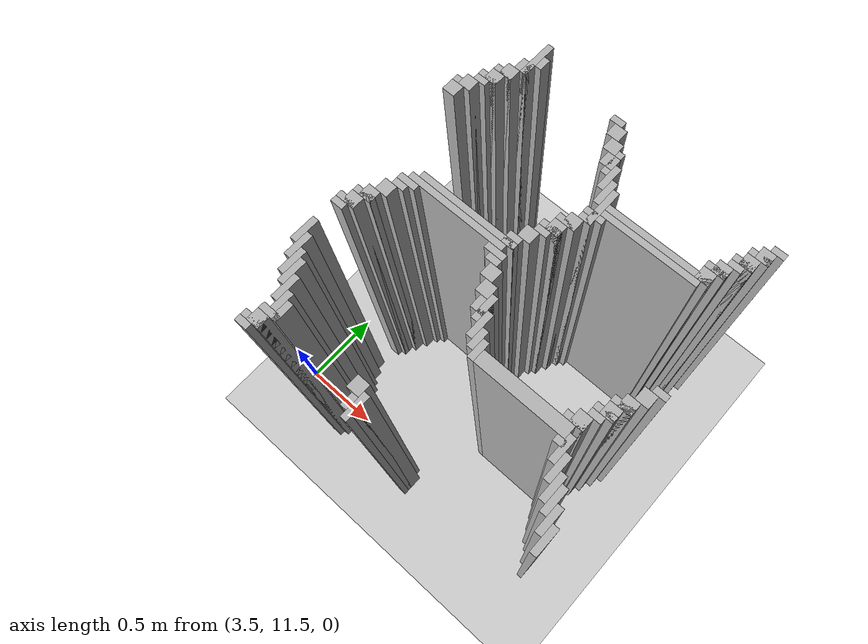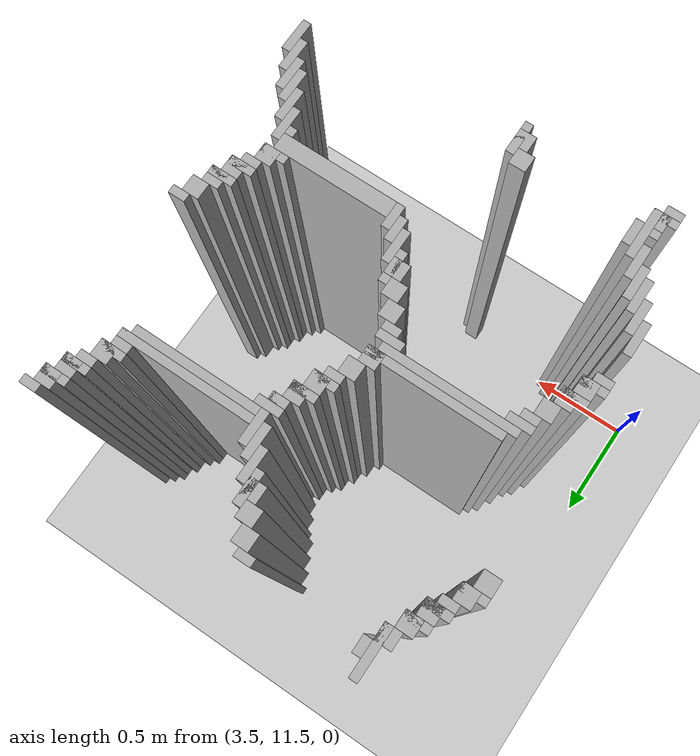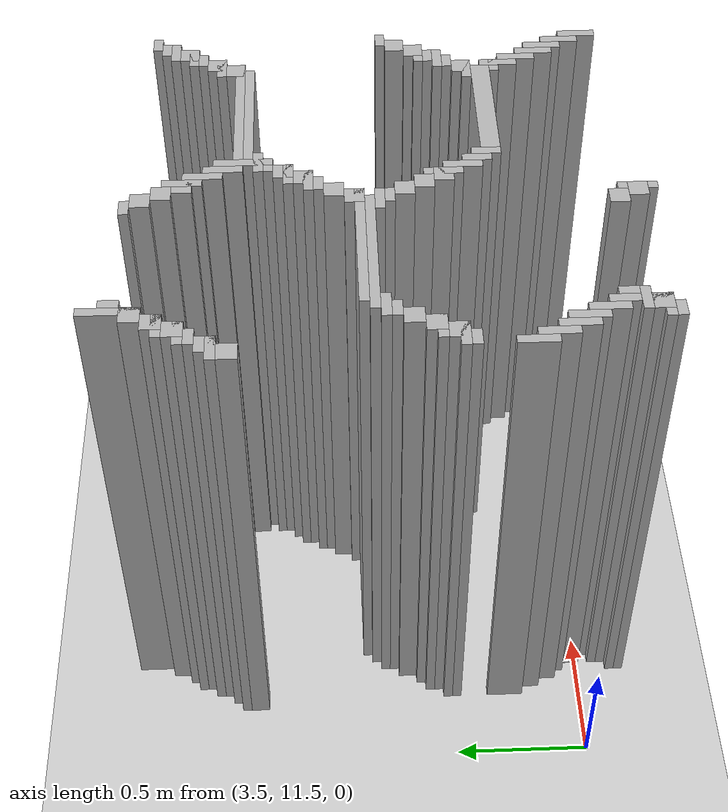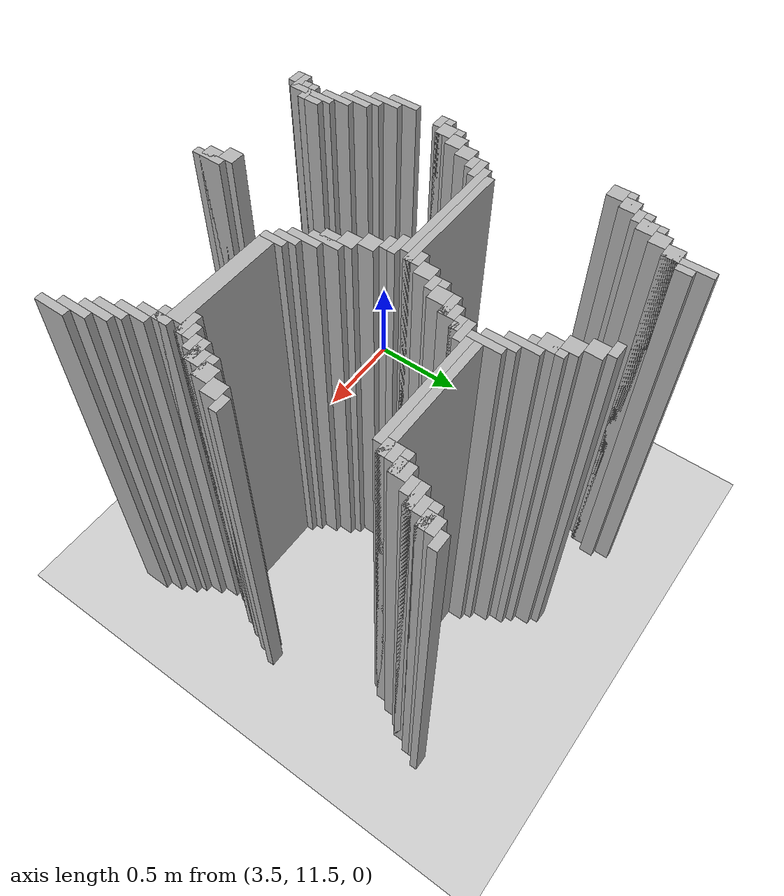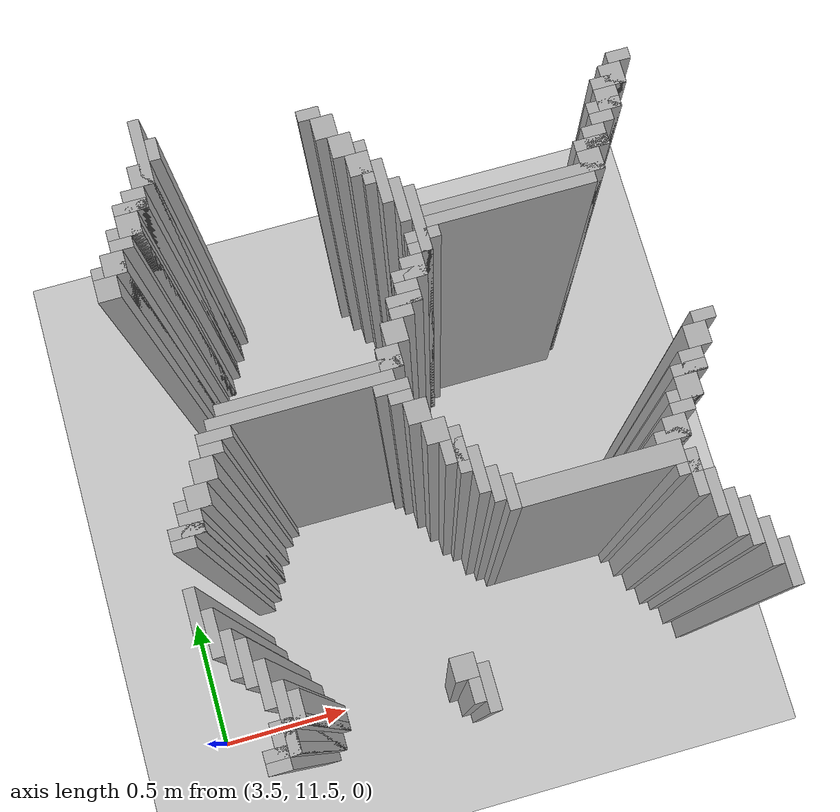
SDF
<sdf version="1.6">
 <world name="slam_world">
  <model name="ground_plane">
   <static>true</static>
   <link name="link">
    <collision name="collision">
     <geometry><plane><normal>0 0 1</normal><size>100 100</size></plane></geometry>
    </collision>
    <visual name="visual">
     <geometry><plane><normal>0 0 1</normal><size>100 100</size></plane></geometry>
     <material>
      <ambient>0.8 0.8 0.8 1</ambient>
      <diffuse>0.8 0.8 0.8 1</diffuse>
      <specular>0.8 0.8 0.8 1</specular>
     </material>
    </visual>
   </link>
  </model>
  <model name="wall_1385">
   <static>true</static>
   <pose>3.9501160092807424 13.155452436194896 1.0 0 0 0</pose>
   <link name="link">
    <collision name="collision">
     <geometry><box><size>0.03480278422273782 0.2088167053364269 2.0</size></box></geometry>
    </collision>
    <visual name="visual">
     <geometry><box><size>0.03480278422273782 0.2088167053364269 2.0</size></box></geometry>
     <material><ambient>0.5 0.5 0.5 1</ambient><diffuse>0.7 0.7 0.7 1</diffuse></material>
    </visual>
   </link>
  </model>
  <model name="wall_1406">
   <static>true</static>
   <pose>3.98491879350348 13.155452436194896 1.0 0 0 0</pose>
   <link name="link">
    <collision name="collision">
     <geometry><box><size>0.03480278422273782 0.06960556844547564 2.0</size></box></geometry>
    </collision>
    <visual name="visual">
     <geometry><box><size>0.03480278422273782 0.06960556844547564 2.0</size></box></geometry>
     <material><ambient>0.5 0.5 0.5 1</ambient><diffuse>0.7 0.7 0.7 1</diffuse></material>
    </visual>
   </link>
  </model>
  <model name="wall_1421">
   <static>true</static>
   <pose>4.454756380510441 13.138051044083527 1.0 0 0 0</pose>
   <link name="link">
    <collision name="collision">
     <geometry><box><size>0.06960556844547564 0.03480278422273782 2.0</size></box></geometry>
    </collision>
    <visual name="visual">
     <geometry><box><size>0.06960556844547564 0.03480278422273782 2.0</size></box></geometry>
     <material><ambient>0.5 0.5 0.5 1</ambient><diffuse>0.7 0.7 0.7 1</diffuse></material>
    </visual>
   </link>
  </model>
  <model name="wall_1429">
   <static>true</static>
   <pose>3.932714617169373 13.085846867749419 1.0 0 0 0</pose>
   <link name="link">
    <collision name="collision">
     <geometry><box><size>0.06960556844547564 0.06960556844547564 2.0</size></box></geometry>
    </collision>
    <visual name="visual">
     <geometry><box><size>0.06960556844547564 0.06960556844547564 2.0</size></box></geometry>
     <material><ambient>0.5 0.5 0.5 1</ambient><diffuse>0.7 0.7 0.7 1</diffuse></material>
    </visual>
   </link>
  </model>
  <model name="wall_1430">
   <static>true</static>
   <pose>4.489559164733178 13.085846867749419 1.0 0 0 0</pose>
   <link name="link">
    <collision name="collision">
     <geometry><box><size>0.06960556844547564 0.06960556844547564 2.0</size></box></geometry>
    </collision>
    <visual name="visual">
     <geometry><box><size>0.06960556844547564 0.06960556844547564 2.0</size></box></geometry>
     <material><ambient>0.5 0.5 0.5 1</ambient><diffuse>0.7 0.7 0.7 1</diffuse></material>
    </visual>
   </link>
  </model>
  <model name="wall_1444">
   <static>true</static>
   <pose>5.3944315545243615 13.06844547563805 1.0 0 0 0</pose>
   <link name="link">
    <collision name="collision">
     <geometry><box><size>0.06960556844547564 0.03480278422273782 2.0</size></box></geometry>
    </collision>
    <visual name="visual">
     <geometry><box><size>0.06960556844547564 0.03480278422273782 2.0</size></box></geometry>
     <material><ambient>0.5 0.5 0.5 1</ambient><diffuse>0.7 0.7 0.7 1</diffuse></material>
    </visual>
   </link>
  </model>
  <model name="wall_1451">
   <static>true</static>
   <pose>3.897911832946636 13.016241299303944 1.0 0 0 0</pose>
   <link name="link">
    <collision name="collision">
     <geometry><box><size>0.06960556844547564 0.06960556844547564 2.0</size></box></geometry>
    </collision>
    <visual name="visual">
     <geometry><box><size>0.06960556844547564 0.06960556844547564 2.0</size></box></geometry>
     <material><ambient>0.5 0.5 0.5 1</ambient><diffuse>0.7 0.7 0.7 1</diffuse></material>
    </visual>
   </link>
  </model>
  <model name="wall_1452">
   <static>true</static>
   <pose>4.524361948955916 13.016241299303944 1.0 0 0 0</pose>
   <link name="link">
    <collision name="collision">
     <geometry><box><size>0.06960556844547564 0.06960556844547564 2.0</size></box></geometry>
    </collision>
    <visual name="visual">
     <geometry><box><size>0.06960556844547564 0.06960556844547564 2.0</size></box></geometry>
     <material><ambient>0.5 0.5 0.5 1</ambient><diffuse>0.7 0.7 0.7 1</diffuse></material>
    </visual>
   </link>
  </model>
  <model name="wall_1453">
   <static>true</static>
   <pose>5.359628770301624 13.016241299303944 1.0 0 0 0</pose>
   <link name="link">
    <collision name="collision">
     <geometry><box><size>0.06960556844547564 0.06960556844547564 2.0</size></box></geometry>
    </collision>
    <visual name="visual">
     <geometry><box><size>0.06960556844547564 0.06960556844547564 2.0</size></box></geometry>
     <material><ambient>0.5 0.5 0.5 1</ambient><diffuse>0.7 0.7 0.7 1</diffuse></material>
    </visual>
   </link>
  </model>
  <model name="wall_1467">
   <static>true</static>
   <pose>3.8805104408352666 12.998839907192576 1.0 0 0 0</pose>
   <link name="link">
    <collision name="collision">
     <geometry><box><size>0.10440835266821345 0.03480278422273782 2.0</size></box></geometry>
    </collision>
    <visual name="visual">
     <geometry><box><size>0.10440835266821345 0.03480278422273782 2.0</size></box></geometry>
     <material><ambient>0.5 0.5 0.5 1</ambient><diffuse>0.7 0.7 0.7 1</diffuse></material>
    </visual>
   </link>
  </model>
  <model name="wall_1468">
   <static>true</static>
   <pose>4.576566125290023 12.946635730858468 1.0 0 0 0</pose>
   <link name="link">
    <collision name="collision">
     <geometry><box><size>0.03480278422273782 0.13921113689095127 2.0</size></box></geometry>
    </collision>
    <visual name="visual">
     <geometry><box><size>0.03480278422273782 0.13921113689095127 2.0</size></box></geometry>
     <material><ambient>0.5 0.5 0.5 1</ambient><diffuse>0.7 0.7 0.7 1</diffuse></material>
    </visual>
   </link>
  </model>
  <model name="wall_1469">
   <static>true</static>
   <pose>5.342227378190255 12.998839907192576 1.0 0 0 0</pose>
   <link name="link">
    <collision name="collision">
     <geometry><box><size>0.10440835266821345 0.03480278422273782 2.0</size></box></geometry>
    </collision>
    <visual name="visual">
     <geometry><box><size>0.10440835266821345 0.03480278422273782 2.0</size></box></geometry>
     <material><ambient>0.5 0.5 0.5 1</ambient><diffuse>0.7 0.7 0.7 1</diffuse></material>
    </visual>
   </link>
  </model>
  <model name="wall_1483">
   <static>true</static>
   <pose>3.863109048723898 12.946635730858468 1.0 0 0 0</pose>
   <link name="link">
    <collision name="collision">
     <geometry><box><size>0.06960556844547564 0.06960556844547564 2.0</size></box></geometry>
    </collision>
    <visual name="visual">
     <geometry><box><size>0.06960556844547564 0.06960556844547564 2.0</size></box></geometry>
     <material><ambient>0.5 0.5 0.5 1</ambient><diffuse>0.7 0.7 0.7 1</diffuse></material>
    </visual>
   </link>
  </model>
  <model name="wall_1484">
   <static>true</static>
   <pose>4.559164733178654 12.946635730858468 1.0 0 0 0</pose>
   <link name="link">
    <collision name="collision">
     <geometry><box><size>0.06960556844547564 0.06960556844547564 2.0</size></box></geometry>
    </collision>
    <visual name="visual">
     <geometry><box><size>0.06960556844547564 0.06960556844547564 2.0</size></box></geometry>
     <material><ambient>0.5 0.5 0.5 1</ambient><diffuse>0.7 0.7 0.7 1</diffuse></material>
    </visual>
   </link>
  </model>
  <model name="wall_1485">
   <static>true</static>
   <pose>5.324825986078886 12.946635730858468 1.0 0 0 0</pose>
   <link name="link">
    <collision name="collision">
     <geometry><box><size>0.06960556844547564 0.06960556844547564 2.0</size></box></geometry>
    </collision>
    <visual name="visual">
     <geometry><box><size>0.06960556844547564 0.06960556844547564 2.0</size></box></geometry>
     <material><ambient>0.5 0.5 0.5 1</ambient><diffuse>0.7 0.7 0.7 1</diffuse></material>
    </visual>
   </link>
  </model>
  <model name="wall_1499">
   <static>true</static>
   <pose>3.845707656612529 12.929234338747099 1.0 0 0 0</pose>
   <link name="link">
    <collision name="collision">
     <geometry><box><size>0.10440835266821345 0.03480278422273782 2.0</size></box></geometry>
    </collision>
    <visual name="visual">
     <geometry><box><size>0.10440835266821345 0.03480278422273782 2.0</size></box></geometry>
     <material><ambient>0.5 0.5 0.5 1</ambient><diffuse>0.7 0.7 0.7 1</diffuse></material>
    </visual>
   </link>
  </model>
  <model name="wall_1500">
   <static>true</static>
   <pose>4.611368909512761 12.877030162412993 1.0 0 0 0</pose>
   <link name="link">
    <collision name="collision">
     <geometry><box><size>0.03480278422273782 0.13921113689095127 2.0</size></box></geometry>
    </collision>
    <visual name="visual">
     <geometry><box><size>0.03480278422273782 0.13921113689095127 2.0</size></box></geometry>
     <material><ambient>0.5 0.5 0.5 1</ambient><diffuse>0.7 0.7 0.7 1</diffuse></material>
    </visual>
   </link>
  </model>
  <model name="wall_1501">
   <static>true</static>
   <pose>5.307424593967517 12.929234338747099 1.0 0 0 0</pose>
   <link name="link">
    <collision name="collision">
     <geometry><box><size>0.10440835266821345 0.03480278422273782 2.0</size></box></geometry>
    </collision>
    <visual name="visual">
     <geometry><box><size>0.10440835266821345 0.03480278422273782 2.0</size></box></geometry>
     <material><ambient>0.5 0.5 0.5 1</ambient><diffuse>0.7 0.7 0.7 1</diffuse></material>
    </visual>
   </link>
  </model>
  <model name="wall_1513">
   <static>true</static>
   <pose>3.82830626450116 12.894431554524362 1.0 0 0 0</pose>
   <link name="link">
    <collision name="collision">
     <geometry><box><size>0.06960556844547564 0.03480278422273782 2.0</size></box></geometry>
    </collision>
    <visual name="visual">
     <geometry><box><size>0.06960556844547564 0.03480278422273782 2.0</size></box></geometry>
     <material><ambient>0.5 0.5 0.5 1</ambient><diffuse>0.7 0.7 0.7 1</diffuse></material>
    </visual>
   </link>
  </model>
  <model name="wall_1514">
   <static>true</static>
   <pose>5.290023201856148 12.894431554524362 1.0 0 0 0</pose>
   <link name="link">
    <collision name="collision">
     <geometry><box><size>0.06960556844547564 0.03480278422273782 2.0</size></box></geometry>
    </collision>
    <visual name="visual">
     <geometry><box><size>0.06960556844547564 0.03480278422273782 2.0</size></box></geometry>
     <material><ambient>0.5 0.5 0.5 1</ambient><diffuse>0.7 0.7 0.7 1</diffuse></material>
    </visual>
   </link>
  </model>
  <model name="wall_1524">
   <static>true</static>
   <pose>3.793503480278422 12.842227378190255 1.0 0 0 0</pose>
   <link name="link">
    <collision name="collision">
     <geometry><box><size>0.06960556844547564 0.06960556844547564 2.0</size></box></geometry>
    </collision>
    <visual name="visual">
     <geometry><box><size>0.06960556844547564 0.06960556844547564 2.0</size></box></geometry>
     <material><ambient>0.5 0.5 0.5 1</ambient><diffuse>0.7 0.7 0.7 1</diffuse></material>
    </visual>
   </link>
  </model>
  <model name="wall_1525">
   <static>true</static>
   <pose>4.646171693735498 12.807424593967516 1.0 0 0 0</pose>
   <link name="link">
    <collision name="collision">
     <geometry><box><size>0.03480278422273782 0.13921113689095127 2.0</size></box></geometry>
    </collision>
    <visual name="visual">
     <geometry><box><size>0.03480278422273782 0.13921113689095127 2.0</size></box></geometry>
     <material><ambient>0.5 0.5 0.5 1</ambient><diffuse>0.7 0.7 0.7 1</diffuse></material>
    </visual>
   </link>
  </model>
  <model name="wall_1526">
   <static>true</static>
   <pose>5.25522041763341 12.842227378190255 1.0 0 0 0</pose>
   <link name="link">
    <collision name="collision">
     <geometry><box><size>0.06960556844547564 0.06960556844547564 2.0</size></box></geometry>
    </collision>
    <visual name="visual">
     <geometry><box><size>0.06960556844547564 0.06960556844547564 2.0</size></box></geometry>
     <material><ambient>0.5 0.5 0.5 1</ambient><diffuse>0.7 0.7 0.7 1</diffuse></material>
    </visual>
   </link>
  </model>
  <model name="wall_1540">
   <static>true</static>
   <pose>3.776102088167053 12.824825986078885 1.0 0 0 0</pose>
   <link name="link">
    <collision name="collision">
     <geometry><box><size>0.10440835266821345 0.03480278422273782 2.0</size></box></geometry>
    </collision>
    <visual name="visual">
     <geometry><box><size>0.10440835266821345 0.03480278422273782 2.0</size></box></geometry>
     <material><ambient>0.5 0.5 0.5 1</ambient><diffuse>0.7 0.7 0.7 1</diffuse></material>
    </visual>
   </link>
  </model>
  <model name="wall_1541">
   <static>true</static>
   <pose>4.6809744779582365 12.737819025522041 1.0 0 0 0</pose>
   <link name="link">
    <collision name="collision">
     <geometry><box><size>0.03480278422273782 0.2088167053364269 2.0</size></box></geometry>
    </collision>
    <visual name="visual">
     <geometry><box><size>0.03480278422273782 0.2088167053364269 2.0</size></box></geometry>
     <material><ambient>0.5 0.5 0.5 1</ambient><diffuse>0.7 0.7 0.7 1</diffuse></material>
    </visual>
   </link>
  </model>
  <model name="wall_1542">
   <static>true</static>
   <pose>5.237819025522041 12.824825986078885 1.0 0 0 0</pose>
   <link name="link">
    <collision name="collision">
     <geometry><box><size>0.10440835266821345 0.03480278422273782 2.0</size></box></geometry>
    </collision>
    <visual name="visual">
     <geometry><box><size>0.10440835266821345 0.03480278422273782 2.0</size></box></geometry>
     <material><ambient>0.5 0.5 0.5 1</ambient><diffuse>0.7 0.7 0.7 1</diffuse></material>
    </visual>
   </link>
  </model>
  <model name="wall_1554">
   <static>true</static>
   <pose>3.7587006960556844 12.772621809744779 1.0 0 0 0</pose>
   <link name="link">
    <collision name="collision">
     <geometry><box><size>0.06960556844547564 0.06960556844547564 2.0</size></box></geometry>
    </collision>
    <visual name="visual">
     <geometry><box><size>0.06960556844547564 0.06960556844547564 2.0</size></box></geometry>
     <material><ambient>0.5 0.5 0.5 1</ambient><diffuse>0.7 0.7 0.7 1</diffuse></material>
    </visual>
   </link>
  </model>
  <model name="wall_1555">
   <static>true</static>
   <pose>5.220417633410673 12.772621809744779 1.0 0 0 0</pose>
   <link name="link">
    <collision name="collision">
     <geometry><box><size>0.06960556844547564 0.06960556844547564 2.0</size></box></geometry>
    </collision>
    <visual name="visual">
     <geometry><box><size>0.06960556844547564 0.06960556844547564 2.0</size></box></geometry>
     <material><ambient>0.5 0.5 0.5 1</ambient><diffuse>0.7 0.7 0.7 1</diffuse></material>
    </visual>
   </link>
  </model>
  <model name="wall_1566">
   <static>true</static>
   <pose>4.976798143851508 12.75522041763341 1.0 0 0 0</pose>
   <link name="link">
    <collision name="collision">
     <geometry><box><size>0.5568445475638051 0.03480278422273782 2.0</size></box></geometry>
    </collision>
    <visual name="visual">
     <geometry><box><size>0.5568445475638051 0.03480278422273782 2.0</size></box></geometry>
     <material><ambient>0.5 0.5 0.5 1</ambient><diffuse>0.7 0.7 0.7 1</diffuse></material>
    </visual>
   </link>
  </model>
  <model name="wall_1578">
   <static>true</static>
   <pose>4.959396751740139 12.720417633410673 1.0 0 0 0</pose>
   <link name="link">
    <collision name="collision">
     <geometry><box><size>0.5220417633410672 0.03480278422273782 2.0</size></box></geometry>
    </collision>
    <visual name="visual">
     <geometry><box><size>0.5220417633410672 0.03480278422273782 2.0</size></box></geometry>
     <material><ambient>0.5 0.5 0.5 1</ambient><diffuse>0.7 0.7 0.7 1</diffuse></material>
    </visual>
   </link>
  </model>
  <model name="wall_1589">
   <static>true</static>
   <pose>4.6809744779582365 12.685614849187935 1.0 0 0 0</pose>
   <link name="link">
    <collision name="collision">
     <geometry><box><size>0.10440835266821345 0.03480278422273782 2.0</size></box></geometry>
    </collision>
    <visual name="visual">
     <geometry><box><size>0.10440835266821345 0.03480278422273782 2.0</size></box></geometry>
     <material><ambient>0.5 0.5 0.5 1</ambient><diffuse>0.7 0.7 0.7 1</diffuse></material>
    </visual>
   </link>
  </model>
  <model name="wall_1602">
   <static>true</static>
   <pose>4.663573085846868 12.650812064965196 1.0 0 0 0</pose>
   <link name="link">
    <collision name="collision">
     <geometry><box><size>0.06960556844547564 0.03480278422273782 2.0</size></box></geometry>
    </collision>
    <visual name="visual">
     <geometry><box><size>0.06960556844547564 0.03480278422273782 2.0</size></box></geometry>
     <material><ambient>0.5 0.5 0.5 1</ambient><diffuse>0.7 0.7 0.7 1</diffuse></material>
    </visual>
   </link>
  </model>
  <model name="wall_1613">
   <static>true</static>
   <pose>4.6287703016241295 12.59860788863109 1.0 0 0 0</pose>
   <link name="link">
    <collision name="collision">
     <geometry><box><size>0.06960556844547564 0.06960556844547564 2.0</size></box></geometry>
    </collision>
    <visual name="visual">
     <geometry><box><size>0.06960556844547564 0.06960556844547564 2.0</size></box></geometry>
     <material><ambient>0.5 0.5 0.5 1</ambient><diffuse>0.7 0.7 0.7 1</diffuse></material>
    </visual>
   </link>
  </model>
  <model name="wall_1626">
   <static>true</static>
   <pose>4.611368909512761 12.581206496519721 1.0 0 0 0</pose>
   <link name="link">
    <collision name="collision">
     <geometry><box><size>0.10440835266821345 0.03480278422273782 2.0</size></box></geometry>
    </collision>
    <visual name="visual">
     <geometry><box><size>0.10440835266821345 0.03480278422273782 2.0</size></box></geometry>
     <material><ambient>0.5 0.5 0.5 1</ambient><diffuse>0.7 0.7 0.7 1</diffuse></material>
    </visual>
   </link>
  </model>
  <model name="wall_1638">
   <static>true</static>
   <pose>4.593967517401392 12.529002320185615 1.0 0 0 0</pose>
   <link name="link">
    <collision name="collision">
     <geometry><box><size>0.06960556844547564 0.06960556844547564 2.0</size></box></geometry>
    </collision>
    <visual name="visual">
     <geometry><box><size>0.06960556844547564 0.06960556844547564 2.0</size></box></geometry>
     <material><ambient>0.5 0.5 0.5 1</ambient><diffuse>0.7 0.7 0.7 1</diffuse></material>
    </visual>
   </link>
  </model>
  <model name="wall_1650">
   <static>true</static>
   <pose>4.576566125290023 12.511600928074245 1.0 0 0 0</pose>
   <link name="link">
    <collision name="collision">
     <geometry><box><size>0.10440835266821345 0.03480278422273782 2.0</size></box></geometry>
    </collision>
    <visual name="visual">
     <geometry><box><size>0.10440835266821345 0.03480278422273782 2.0</size></box></geometry>
     <material><ambient>0.5 0.5 0.5 1</ambient><diffuse>0.7 0.7 0.7 1</diffuse></material>
    </visual>
   </link>
  </model>
  <model name="wall_1661">
   <static>true</static>
   <pose>4.559164733178654 12.476798143851507 1.0 0 0 0</pose>
   <link name="link">
    <collision name="collision">
     <geometry><box><size>0.06960556844547564 0.03480278422273782 2.0</size></box></geometry>
    </collision>
    <visual name="visual">
     <geometry><box><size>0.06960556844547564 0.03480278422273782 2.0</size></box></geometry>
     <material><ambient>0.5 0.5 0.5 1</ambient><diffuse>0.7 0.7 0.7 1</diffuse></material>
    </visual>
   </link>
  </model>
  <model name="wall_1671">
   <static>true</static>
   <pose>4.524361948955916 12.424593967517401 1.0 0 0 0</pose>
   <link name="link">
    <collision name="collision">
     <geometry><box><size>0.06960556844547564 0.06960556844547564 2.0</size></box></geometry>
    </collision>
    <visual name="visual">
     <geometry><box><size>0.06960556844547564 0.06960556844547564 2.0</size></box></geometry>
     <material><ambient>0.5 0.5 0.5 1</ambient><diffuse>0.7 0.7 0.7 1</diffuse></material>
    </visual>
   </link>
  </model>
  <model name="wall_1684">
   <static>true</static>
   <pose>4.489559164733178 12.354988399071924 1.0 0 0 0</pose>
   <link name="link">
    <collision name="collision">
     <geometry><box><size>0.06960556844547564 0.06960556844547564 2.0</size></box></geometry>
    </collision>
    <visual name="visual">
     <geometry><box><size>0.06960556844547564 0.06960556844547564 2.0</size></box></geometry>
     <material><ambient>0.5 0.5 0.5 1</ambient><diffuse>0.7 0.7 0.7 1</diffuse></material>
    </visual>
   </link>
  </model>
  <model name="wall_1697">
   <static>true</static>
   <pose>4.2459396751740135 12.337587006960556 1.0 0 0 0</pose>
   <link name="link">
    <collision name="collision">
     <geometry><box><size>0.5568445475638051 0.03480278422273782 2.0</size></box></geometry>
    </collision>
    <visual name="visual">
     <geometry><box><size>0.5568445475638051 0.03480278422273782 2.0</size></box></geometry>
     <material><ambient>0.5 0.5 0.5 1</ambient><diffuse>0.7 0.7 0.7 1</diffuse></material>
    </visual>
   </link>
  </model>
  <model name="wall_1708">
   <static>true</static>
   <pose>4.211136890951276 12.302784222737818 1.0 0 0 0</pose>
   <link name="link">
    <collision name="collision">
     <geometry><box><size>0.5568445475638051 0.03480278422273782 2.0</size></box></geometry>
    </collision>
    <visual name="visual">
     <geometry><box><size>0.5568445475638051 0.03480278422273782 2.0</size></box></geometry>
     <material><ambient>0.5 0.5 0.5 1</ambient><diffuse>0.7 0.7 0.7 1</diffuse></material>
    </visual>
   </link>
  </model>
  <model name="wall_1721">
   <static>true</static>
   <pose>3.9501160092807424 12.267981438515081 1.0 0 0 0</pose>
   <link name="link">
    <collision name="collision">
     <geometry><box><size>0.10440835266821345 0.03480278422273782 2.0</size></box></geometry>
    </collision>
    <visual name="visual">
     <geometry><box><size>0.10440835266821345 0.03480278422273782 2.0</size></box></geometry>
     <material><ambient>0.5 0.5 0.5 1</ambient><diffuse>0.7 0.7 0.7 1</diffuse></material>
    </visual>
   </link>
  </model>
  <model name="wall_1722">
   <static>true</static>
   <pose>4.472157772621809 12.267981438515081 1.0 0 0 0</pose>
   <link name="link">
    <collision name="collision">
     <geometry><box><size>0.10440835266821345 0.03480278422273782 2.0</size></box></geometry>
    </collision>
    <visual name="visual">
     <geometry><box><size>0.10440835266821345 0.03480278422273782 2.0</size></box></geometry>
     <material><ambient>0.5 0.5 0.5 1</ambient><diffuse>0.7 0.7 0.7 1</diffuse></material>
    </visual>
   </link>
  </model>
  <model name="wall_1740">
   <static>true</static>
   <pose>3.932714617169373 12.233178654292344 1.0 0 0 0</pose>
   <link name="link">
    <collision name="collision">
     <geometry><box><size>0.06960556844547564 0.03480278422273782 2.0</size></box></geometry>
    </collision>
    <visual name="visual">
     <geometry><box><size>0.06960556844547564 0.03480278422273782 2.0</size></box></geometry>
     <material><ambient>0.5 0.5 0.5 1</ambient><diffuse>0.7 0.7 0.7 1</diffuse></material>
    </visual>
   </link>
  </model>
  <model name="wall_1741">
   <static>true</static>
   <pose>4.489559164733178 12.233178654292344 1.0 0 0 0</pose>
   <link name="link">
    <collision name="collision">
     <geometry><box><size>0.06960556844547564 0.03480278422273782 2.0</size></box></geometry>
    </collision>
    <visual name="visual">
     <geometry><box><size>0.06960556844547564 0.03480278422273782 2.0</size></box></geometry>
     <material><ambient>0.5 0.5 0.5 1</ambient><diffuse>0.7 0.7 0.7 1</diffuse></material>
    </visual>
   </link>
  </model>
  <model name="wall_1742">
   <static>true</static>
   <pose>5.3944315545243615 12.233178654292344 1.0 0 0 0</pose>
   <link name="link">
    <collision name="collision">
     <geometry><box><size>0.06960556844547564 0.03480278422273782 2.0</size></box></geometry>
    </collision>
    <visual name="visual">
     <geometry><box><size>0.06960556844547564 0.03480278422273782 2.0</size></box></geometry>
     <material><ambient>0.5 0.5 0.5 1</ambient><diffuse>0.7 0.7 0.7 1</diffuse></material>
    </visual>
   </link>
  </model>
  <model name="wall_1756">
   <static>true</static>
   <pose>3.897911832946636 12.180974477958236 1.0 0 0 0</pose>
   <link name="link">
    <collision name="collision">
     <geometry><box><size>0.06960556844547564 0.06960556844547564 2.0</size></box></geometry>
    </collision>
    <visual name="visual">
     <geometry><box><size>0.06960556844547564 0.06960556844547564 2.0</size></box></geometry>
     <material><ambient>0.5 0.5 0.5 1</ambient><diffuse>0.7 0.7 0.7 1</diffuse></material>
    </visual>
   </link>
  </model>
  <model name="wall_1757">
   <static>true</static>
   <pose>4.524361948955916 12.180974477958236 1.0 0 0 0</pose>
   <link name="link">
    <collision name="collision">
     <geometry><box><size>0.06960556844547564 0.06960556844547564 2.0</size></box></geometry>
    </collision>
    <visual name="visual">
     <geometry><box><size>0.06960556844547564 0.06960556844547564 2.0</size></box></geometry>
     <material><ambient>0.5 0.5 0.5 1</ambient><diffuse>0.7 0.7 0.7 1</diffuse></material>
    </visual>
   </link>
  </model>
  <model name="wall_1758">
   <static>true</static>
   <pose>5.359628770301624 12.180974477958236 1.0 0 0 0</pose>
   <link name="link">
    <collision name="collision">
     <geometry><box><size>0.06960556844547564 0.06960556844547564 2.0</size></box></geometry>
    </collision>
    <visual name="visual">
     <geometry><box><size>0.06960556844547564 0.06960556844547564 2.0</size></box></geometry>
     <material><ambient>0.5 0.5 0.5 1</ambient><diffuse>0.7 0.7 0.7 1</diffuse></material>
    </visual>
   </link>
  </model>
  <model name="wall_1772">
   <static>true</static>
   <pose>3.863109048723898 12.11136890951276 1.0 0 0 0</pose>
   <link name="link">
    <collision name="collision">
     <geometry><box><size>0.06960556844547564 0.06960556844547564 2.0</size></box></geometry>
    </collision>
    <visual name="visual">
     <geometry><box><size>0.06960556844547564 0.06960556844547564 2.0</size></box></geometry>
     <material><ambient>0.5 0.5 0.5 1</ambient><diffuse>0.7 0.7 0.7 1</diffuse></material>
    </visual>
   </link>
  </model>
  <model name="wall_1773">
   <static>true</static>
   <pose>4.559164733178654 12.11136890951276 1.0 0 0 0</pose>
   <link name="link">
    <collision name="collision">
     <geometry><box><size>0.06960556844547564 0.06960556844547564 2.0</size></box></geometry>
    </collision>
    <visual name="visual">
     <geometry><box><size>0.06960556844547564 0.06960556844547564 2.0</size></box></geometry>
     <material><ambient>0.5 0.5 0.5 1</ambient><diffuse>0.7 0.7 0.7 1</diffuse></material>
    </visual>
   </link>
  </model>
  <model name="wall_1774">
   <static>true</static>
   <pose>5.324825986078886 12.11136890951276 1.0 0 0 0</pose>
   <link name="link">
    <collision name="collision">
     <geometry><box><size>0.06960556844547564 0.06960556844547564 2.0</size></box></geometry>
    </collision>
    <visual name="visual">
     <geometry><box><size>0.06960556844547564 0.06960556844547564 2.0</size></box></geometry>
     <material><ambient>0.5 0.5 0.5 1</ambient><diffuse>0.7 0.7 0.7 1</diffuse></material>
    </visual>
   </link>
  </model>
  <model name="wall_1788">
   <static>true</static>
   <pose>3.845707656612529 12.093967517401392 1.0 0 0 0</pose>
   <link name="link">
    <collision name="collision">
     <geometry><box><size>0.10440835266821345 0.03480278422273782 2.0</size></box></geometry>
    </collision>
    <visual name="visual">
     <geometry><box><size>0.10440835266821345 0.03480278422273782 2.0</size></box></geometry>
     <material><ambient>0.5 0.5 0.5 1</ambient><diffuse>0.7 0.7 0.7 1</diffuse></material>
    </visual>
   </link>
  </model>
  <model name="wall_1789">
   <static>true</static>
   <pose>4.611368909512761 12.041763341067284 1.0 0 0 0</pose>
   <link name="link">
    <collision name="collision">
     <geometry><box><size>0.03480278422273782 0.13921113689095127 2.0</size></box></geometry>
    </collision>
    <visual name="visual">
     <geometry><box><size>0.03480278422273782 0.13921113689095127 2.0</size></box></geometry>
     <material><ambient>0.5 0.5 0.5 1</ambient><diffuse>0.7 0.7 0.7 1</diffuse></material>
    </visual>
   </link>
  </model>
  <model name="wall_1790">
   <static>true</static>
   <pose>5.307424593967517 12.093967517401392 1.0 0 0 0</pose>
   <link name="link">
    <collision name="collision">
     <geometry><box><size>0.10440835266821345 0.03480278422273782 2.0</size></box></geometry>
    </collision>
    <visual name="visual">
     <geometry><box><size>0.10440835266821345 0.03480278422273782 2.0</size></box></geometry>
     <material><ambient>0.5 0.5 0.5 1</ambient><diffuse>0.7 0.7 0.7 1</diffuse></material>
    </visual>
   </link>
  </model>
  <model name="wall_1801">
   <static>true</static>
   <pose>3.82830626450116 12.041763341067284 1.0 0 0 0</pose>
   <link name="link">
    <collision name="collision">
     <geometry><box><size>0.06960556844547564 0.06960556844547564 2.0</size></box></geometry>
    </collision>
    <visual name="visual">
     <geometry><box><size>0.06960556844547564 0.06960556844547564 2.0</size></box></geometry>
     <material><ambient>0.5 0.5 0.5 1</ambient><diffuse>0.7 0.7 0.7 1</diffuse></material>
    </visual>
   </link>
  </model>
  <model name="wall_1802">
   <static>true</static>
   <pose>4.593967517401392 12.041763341067284 1.0 0 0 0</pose>
   <link name="link">
    <collision name="collision">
     <geometry><box><size>0.06960556844547564 0.06960556844547564 2.0</size></box></geometry>
    </collision>
    <visual name="visual">
     <geometry><box><size>0.06960556844547564 0.06960556844547564 2.0</size></box></geometry>
     <material><ambient>0.5 0.5 0.5 1</ambient><diffuse>0.7 0.7 0.7 1</diffuse></material>
    </visual>
   </link>
  </model>
  <model name="wall_1803">
   <static>true</static>
   <pose>5.290023201856148 12.041763341067284 1.0 0 0 0</pose>
   <link name="link">
    <collision name="collision">
     <geometry><box><size>0.06960556844547564 0.06960556844547564 2.0</size></box></geometry>
    </collision>
    <visual name="visual">
     <geometry><box><size>0.06960556844547564 0.06960556844547564 2.0</size></box></geometry>
     <material><ambient>0.5 0.5 0.5 1</ambient><diffuse>0.7 0.7 0.7 1</diffuse></material>
    </visual>
   </link>
  </model>
  <model name="wall_1814">
   <static>true</static>
   <pose>3.810904872389791 12.024361948955915 1.0 0 0 0</pose>
   <link name="link">
    <collision name="collision">
     <geometry><box><size>0.10440835266821345 0.03480278422273782 2.0</size></box></geometry>
    </collision>
    <visual name="visual">
     <geometry><box><size>0.10440835266821345 0.03480278422273782 2.0</size></box></geometry>
     <material><ambient>0.5 0.5 0.5 1</ambient><diffuse>0.7 0.7 0.7 1</diffuse></material>
    </visual>
   </link>
  </model>
  <model name="wall_1815">
   <static>true</static>
   <pose>4.646171693735498 11.97215777262181 1.0 0 0 0</pose>
   <link name="link">
    <collision name="collision">
     <geometry><box><size>0.03480278422273782 0.13921113689095127 2.0</size></box></geometry>
    </collision>
    <visual name="visual">
     <geometry><box><size>0.03480278422273782 0.13921113689095127 2.0</size></box></geometry>
     <material><ambient>0.5 0.5 0.5 1</ambient><diffuse>0.7 0.7 0.7 1</diffuse></material>
    </visual>
   </link>
  </model>
  <model name="wall_1816">
   <static>true</static>
   <pose>5.27262180974478 12.024361948955915 1.0 0 0 0</pose>
   <link name="link">
    <collision name="collision">
     <geometry><box><size>0.10440835266821345 0.03480278422273782 2.0</size></box></geometry>
    </collision>
    <visual name="visual">
     <geometry><box><size>0.10440835266821345 0.03480278422273782 2.0</size></box></geometry>
     <material><ambient>0.5 0.5 0.5 1</ambient><diffuse>0.7 0.7 0.7 1</diffuse></material>
    </visual>
   </link>
  </model>
  <model name="wall_1827">
   <static>true</static>
   <pose>3.793503480278422 11.989559164733178 1.0 0 0 0</pose>
   <link name="link">
    <collision name="collision">
     <geometry><box><size>0.06960556844547564 0.03480278422273782 2.0</size></box></geometry>
    </collision>
    <visual name="visual">
     <geometry><box><size>0.06960556844547564 0.03480278422273782 2.0</size></box></geometry>
     <material><ambient>0.5 0.5 0.5 1</ambient><diffuse>0.7 0.7 0.7 1</diffuse></material>
    </visual>
   </link>
  </model>
  <model name="wall_1828">
   <static>true</static>
   <pose>5.25522041763341 11.989559164733178 1.0 0 0 0</pose>
   <link name="link">
    <collision name="collision">
     <geometry><box><size>0.06960556844547564 0.03480278422273782 2.0</size></box></geometry>
    </collision>
    <visual name="visual">
     <geometry><box><size>0.06960556844547564 0.03480278422273782 2.0</size></box></geometry>
     <material><ambient>0.5 0.5 0.5 1</ambient><diffuse>0.7 0.7 0.7 1</diffuse></material>
    </visual>
   </link>
  </model>
  <model name="wall_1838">
   <static>true</static>
   <pose>4.6809744779582365 11.919953596287703 1.0 0 0 0</pose>
   <link name="link">
    <collision name="collision">
     <geometry><box><size>0.03480278422273782 0.10440835266821345 2.0</size></box></geometry>
    </collision>
    <visual name="visual">
     <geometry><box><size>0.03480278422273782 0.10440835266821345 2.0</size></box></geometry>
     <material><ambient>0.5 0.5 0.5 1</ambient><diffuse>0.7 0.7 0.7 1</diffuse></material>
    </visual>
   </link>
  </model>
  <model name="wall_1839">
   <static>true</static>
   <pose>5.220417633410673 11.937354988399072 1.0 0 0 0</pose>
   <link name="link">
    <collision name="collision">
     <geometry><box><size>0.06960556844547564 0.06960556844547564 2.0</size></box></geometry>
    </collision>
    <visual name="visual">
     <geometry><box><size>0.06960556844547564 0.06960556844547564 2.0</size></box></geometry>
     <material><ambient>0.5 0.5 0.5 1</ambient><diffuse>0.7 0.7 0.7 1</diffuse></material>
    </visual>
   </link>
  </model>
  <model name="wall_1854">
   <static>true</static>
   <pose>4.715777262180974 11.885150812064964 1.0 0 0 0</pose>
   <link name="link">
    <collision name="collision">
     <geometry><box><size>0.03480278422273782 0.10440835266821345 2.0</size></box></geometry>
    </collision>
    <visual name="visual">
     <geometry><box><size>0.03480278422273782 0.10440835266821345 2.0</size></box></geometry>
     <material><ambient>0.5 0.5 0.5 1</ambient><diffuse>0.7 0.7 0.7 1</diffuse></material>
    </visual>
   </link>
  </model>
  <model name="wall_1855">
   <static>true</static>
   <pose>5.203016241299304 11.919953596287703 1.0 0 0 0</pose>
   <link name="link">
    <collision name="collision">
     <geometry><box><size>0.10440835266821345 0.03480278422273782 2.0</size></box></geometry>
    </collision>
    <visual name="visual">
     <geometry><box><size>0.10440835266821345 0.03480278422273782 2.0</size></box></geometry>
     <material><ambient>0.5 0.5 0.5 1</ambient><diffuse>0.7 0.7 0.7 1</diffuse></material>
    </visual>
   </link>
  </model>
  <model name="wall_1868">
   <static>true</static>
   <pose>4.976798143851508 11.867749419953595 1.0 0 0 0</pose>
   <link name="link">
    <collision name="collision">
     <geometry><box><size>0.4872389791183295 0.06960556844547564 2.0</size></box></geometry>
    </collision>
    <visual name="visual">
     <geometry><box><size>0.4872389791183295 0.06960556844547564 2.0</size></box></geometry>
     <material><ambient>0.5 0.5 0.5 1</ambient><diffuse>0.7 0.7 0.7 1</diffuse></material>
    </visual>
   </link>
  </model>
  <model name="wall_1881">
   <static>true</static>
   <pose>3.776102088167053 11.79814385150812 1.0 0 0 0</pose>
   <link name="link">
    <collision name="collision">
     <geometry><box><size>0.03480278422273782 0.13921113689095127 2.0</size></box></geometry>
    </collision>
    <visual name="visual">
     <geometry><box><size>0.03480278422273782 0.13921113689095127 2.0</size></box></geometry>
     <material><ambient>0.5 0.5 0.5 1</ambient><diffuse>0.7 0.7 0.7 1</diffuse></material>
    </visual>
   </link>
  </model>
  <model name="wall_1882">
   <static>true</static>
   <pose>5.237819025522041 11.79814385150812 1.0 0 0 0</pose>
   <link name="link">
    <collision name="collision">
     <geometry><box><size>0.03480278422273782 0.13921113689095127 2.0</size></box></geometry>
    </collision>
    <visual name="visual">
     <geometry><box><size>0.03480278422273782 0.13921113689095127 2.0</size></box></geometry>
     <material><ambient>0.5 0.5 0.5 1</ambient><diffuse>0.7 0.7 0.7 1</diffuse></material>
    </visual>
   </link>
  </model>
  <model name="wall_1898">
   <static>true</static>
   <pose>5.220417633410673 11.81554524361949 1.0 0 0 0</pose>
   <link name="link">
    <collision name="collision">
     <geometry><box><size>0.06960556844547564 0.03480278422273782 2.0</size></box></geometry>
    </collision>
    <visual name="visual">
     <geometry><box><size>0.06960556844547564 0.03480278422273782 2.0</size></box></geometry>
     <material><ambient>0.5 0.5 0.5 1</ambient><diffuse>0.7 0.7 0.7 1</diffuse></material>
    </visual>
   </link>
  </model>
  <model name="wall_1913">
   <static>true</static>
   <pose>3.810904872389791 11.728538283062644 1.0 0 0 0</pose>
   <link name="link">
    <collision name="collision">
     <geometry><box><size>0.03480278422273782 0.13921113689095127 2.0</size></box></geometry>
    </collision>
    <visual name="visual">
     <geometry><box><size>0.03480278422273782 0.13921113689095127 2.0</size></box></geometry>
     <material><ambient>0.5 0.5 0.5 1</ambient><diffuse>0.7 0.7 0.7 1</diffuse></material>
    </visual>
   </link>
  </model>
  <model name="wall_1914">
   <static>true</static>
   <pose>5.27262180974478 11.728538283062644 1.0 0 0 0</pose>
   <link name="link">
    <collision name="collision">
     <geometry><box><size>0.03480278422273782 0.13921113689095127 2.0</size></box></geometry>
    </collision>
    <visual name="visual">
     <geometry><box><size>0.03480278422273782 0.13921113689095127 2.0</size></box></geometry>
     <material><ambient>0.5 0.5 0.5 1</ambient><diffuse>0.7 0.7 0.7 1</diffuse></material>
    </visual>
   </link>
  </model>
  <model name="wall_1929">
   <static>true</static>
   <pose>3.845707656612529 11.658932714617169 1.0 0 0 0</pose>
   <link name="link">
    <collision name="collision">
     <geometry><box><size>0.03480278422273782 0.13921113689095127 2.0</size></box></geometry>
    </collision>
    <visual name="visual">
     <geometry><box><size>0.03480278422273782 0.13921113689095127 2.0</size></box></geometry>
     <material><ambient>0.5 0.5 0.5 1</ambient><diffuse>0.7 0.7 0.7 1</diffuse></material>
    </visual>
   </link>
  </model>
  <model name="wall_1930">
   <static>true</static>
   <pose>5.307424593967517 11.658932714617169 1.0 0 0 0</pose>
   <link name="link">
    <collision name="collision">
     <geometry><box><size>0.03480278422273782 0.13921113689095127 2.0</size></box></geometry>
    </collision>
    <visual name="visual">
     <geometry><box><size>0.03480278422273782 0.13921113689095127 2.0</size></box></geometry>
     <material><ambient>0.5 0.5 0.5 1</ambient><diffuse>0.7 0.7 0.7 1</diffuse></material>
    </visual>
   </link>
  </model>
  <model name="wall_1945">
   <static>true</static>
   <pose>3.8805104408352666 11.624129930394432 1.0 0 0 0</pose>
   <link name="link">
    <collision name="collision">
     <geometry><box><size>0.03480278422273782 0.13921113689095127 2.0</size></box></geometry>
    </collision>
    <visual name="visual">
     <geometry><box><size>0.03480278422273782 0.13921113689095127 2.0</size></box></geometry>
     <material><ambient>0.5 0.5 0.5 1</ambient><diffuse>0.7 0.7 0.7 1</diffuse></material>
    </visual>
   </link>
  </model>
  <model name="wall_1946">
   <static>true</static>
   <pose>5.342227378190255 11.624129930394432 1.0 0 0 0</pose>
   <link name="link">
    <collision name="collision">
     <geometry><box><size>0.03480278422273782 0.13921113689095127 2.0</size></box></geometry>
    </collision>
    <visual name="visual">
     <geometry><box><size>0.03480278422273782 0.13921113689095127 2.0</size></box></geometry>
     <material><ambient>0.5 0.5 0.5 1</ambient><diffuse>0.7 0.7 0.7 1</diffuse></material>
    </visual>
   </link>
  </model>
  <model name="wall_1970">
   <static>true</static>
   <pose>3.9153132250580045 11.554524361948955 1.0 0 0 0</pose>
   <link name="link">
    <collision name="collision">
     <geometry><box><size>0.03480278422273782 0.13921113689095127 2.0</size></box></geometry>
    </collision>
    <visual name="visual">
     <geometry><box><size>0.03480278422273782 0.13921113689095127 2.0</size></box></geometry>
     <material><ambient>0.5 0.5 0.5 1</ambient><diffuse>0.7 0.7 0.7 1</diffuse></material>
    </visual>
   </link>
  </model>
  <model name="wall_1971">
   <static>true</static>
   <pose>5.377030162412993 11.554524361948955 1.0 0 0 0</pose>
   <link name="link">
    <collision name="collision">
     <geometry><box><size>0.03480278422273782 0.13921113689095127 2.0</size></box></geometry>
    </collision>
    <visual name="visual">
     <geometry><box><size>0.03480278422273782 0.13921113689095127 2.0</size></box></geometry>
     <material><ambient>0.5 0.5 0.5 1</ambient><diffuse>0.7 0.7 0.7 1</diffuse></material>
    </visual>
   </link>
  </model>
  <model name="wall_1995">
   <static>true</static>
   <pose>3.9501160092807424 11.450116009280743 1.0 0 0 0</pose>
   <link name="link">
    <collision name="collision">
     <geometry><box><size>0.03480278422273782 0.2088167053364269 2.0</size></box></geometry>
    </collision>
    <visual name="visual">
     <geometry><box><size>0.03480278422273782 0.2088167053364269 2.0</size></box></geometry>
     <material><ambient>0.5 0.5 0.5 1</ambient><diffuse>0.7 0.7 0.7 1</diffuse></material>
    </visual>
   </link>
  </model>
  <model name="wall_1996">
   <static>true</static>
   <pose>5.41183294663573 11.48491879350348 1.0 0 0 0</pose>
   <link name="link">
    <collision name="collision">
     <geometry><box><size>0.03480278422273782 0.13921113689095127 2.0</size></box></geometry>
    </collision>
    <visual name="visual">
     <geometry><box><size>0.03480278422273782 0.13921113689095127 2.0</size></box></geometry>
     <material><ambient>0.5 0.5 0.5 1</ambient><diffuse>0.7 0.7 0.7 1</diffuse></material>
    </visual>
   </link>
  </model>
  <model name="wall_2010">
   <static>true</static>
   <pose>3.98491879350348 11.467517401392112 1.0 0 0 0</pose>
   <link name="link">
    <collision name="collision">
     <geometry><box><size>0.03480278422273782 0.10440835266821345 2.0</size></box></geometry>
    </collision>
    <visual name="visual">
     <geometry><box><size>0.03480278422273782 0.10440835266821345 2.0</size></box></geometry>
     <material><ambient>0.5 0.5 0.5 1</ambient><diffuse>0.7 0.7 0.7 1</diffuse></material>
    </visual>
   </link>
  </model>
  <model name="wall_2025">
   <static>true</static>
   <pose>4.454756380510441 11.450116009280743 1.0 0 0 0</pose>
   <link name="link">
    <collision name="collision">
     <geometry><box><size>0.06960556844547564 0.06960556844547564 2.0</size></box></geometry>
    </collision>
    <visual name="visual">
     <geometry><box><size>0.06960556844547564 0.06960556844547564 2.0</size></box></geometry>
     <material><ambient>0.5 0.5 0.5 1</ambient><diffuse>0.7 0.7 0.7 1</diffuse></material>
    </visual>
   </link>
  </model>
  <model name="wall_2037">
   <static>true</static>
   <pose>3.9501160092807424 11.432714617169372 1.0 0 0 0</pose>
   <link name="link">
    <collision name="collision">
     <geometry><box><size>0.10440835266821345 0.03480278422273782 2.0</size></box></geometry>
    </collision>
    <visual name="visual">
     <geometry><box><size>0.10440835266821345 0.03480278422273782 2.0</size></box></geometry>
     <material><ambient>0.5 0.5 0.5 1</ambient><diffuse>0.7 0.7 0.7 1</diffuse></material>
    </visual>
   </link>
  </model>
  <model name="wall_2038">
   <static>true</static>
   <pose>4.506960556844548 11.380510440835266 1.0 0 0 0</pose>
   <link name="link">
    <collision name="collision">
     <geometry><box><size>0.03480278422273782 0.13921113689095127 2.0</size></box></geometry>
    </collision>
    <visual name="visual">
     <geometry><box><size>0.03480278422273782 0.13921113689095127 2.0</size></box></geometry>
     <material><ambient>0.5 0.5 0.5 1</ambient><diffuse>0.7 0.7 0.7 1</diffuse></material>
    </visual>
   </link>
  </model>
  <model name="wall_2054">
   <static>true</static>
   <pose>3.932714617169373 11.380510440835266 1.0 0 0 0</pose>
   <link name="link">
    <collision name="collision">
     <geometry><box><size>0.06960556844547564 0.06960556844547564 2.0</size></box></geometry>
    </collision>
    <visual name="visual">
     <geometry><box><size>0.06960556844547564 0.06960556844547564 2.0</size></box></geometry>
     <material><ambient>0.5 0.5 0.5 1</ambient><diffuse>0.7 0.7 0.7 1</diffuse></material>
    </visual>
   </link>
  </model>
  <model name="wall_2055">
   <static>true</static>
   <pose>4.489559164733178 11.380510440835266 1.0 0 0 0</pose>
   <link name="link">
    <collision name="collision">
     <geometry><box><size>0.06960556844547564 0.06960556844547564 2.0</size></box></geometry>
    </collision>
    <visual name="visual">
     <geometry><box><size>0.06960556844547564 0.06960556844547564 2.0</size></box></geometry>
     <material><ambient>0.5 0.5 0.5 1</ambient><diffuse>0.7 0.7 0.7 1</diffuse></material>
    </visual>
   </link>
  </model>
  <model name="wall_2071">
   <static>true</static>
   <pose>3.9153132250580045 11.363109048723897 1.0 0 0 0</pose>
   <link name="link">
    <collision name="collision">
     <geometry><box><size>0.10440835266821345 0.03480278422273782 2.0</size></box></geometry>
    </collision>
    <visual name="visual">
     <geometry><box><size>0.10440835266821345 0.03480278422273782 2.0</size></box></geometry>
     <material><ambient>0.5 0.5 0.5 1</ambient><diffuse>0.7 0.7 0.7 1</diffuse></material>
    </visual>
   </link>
  </model>
  <model name="wall_2086">
   <static>true</static>
   <pose>3.897911832946636 11.32830626450116 1.0 0 0 0</pose>
   <link name="link">
    <collision name="collision">
     <geometry><box><size>0.06960556844547564 0.03480278422273782 2.0</size></box></geometry>
    </collision>
    <visual name="visual">
     <geometry><box><size>0.06960556844547564 0.03480278422273782 2.0</size></box></geometry>
     <material><ambient>0.5 0.5 0.5 1</ambient><diffuse>0.7 0.7 0.7 1</diffuse></material>
    </visual>
   </link>
  </model>
 </world>
</sdf>
